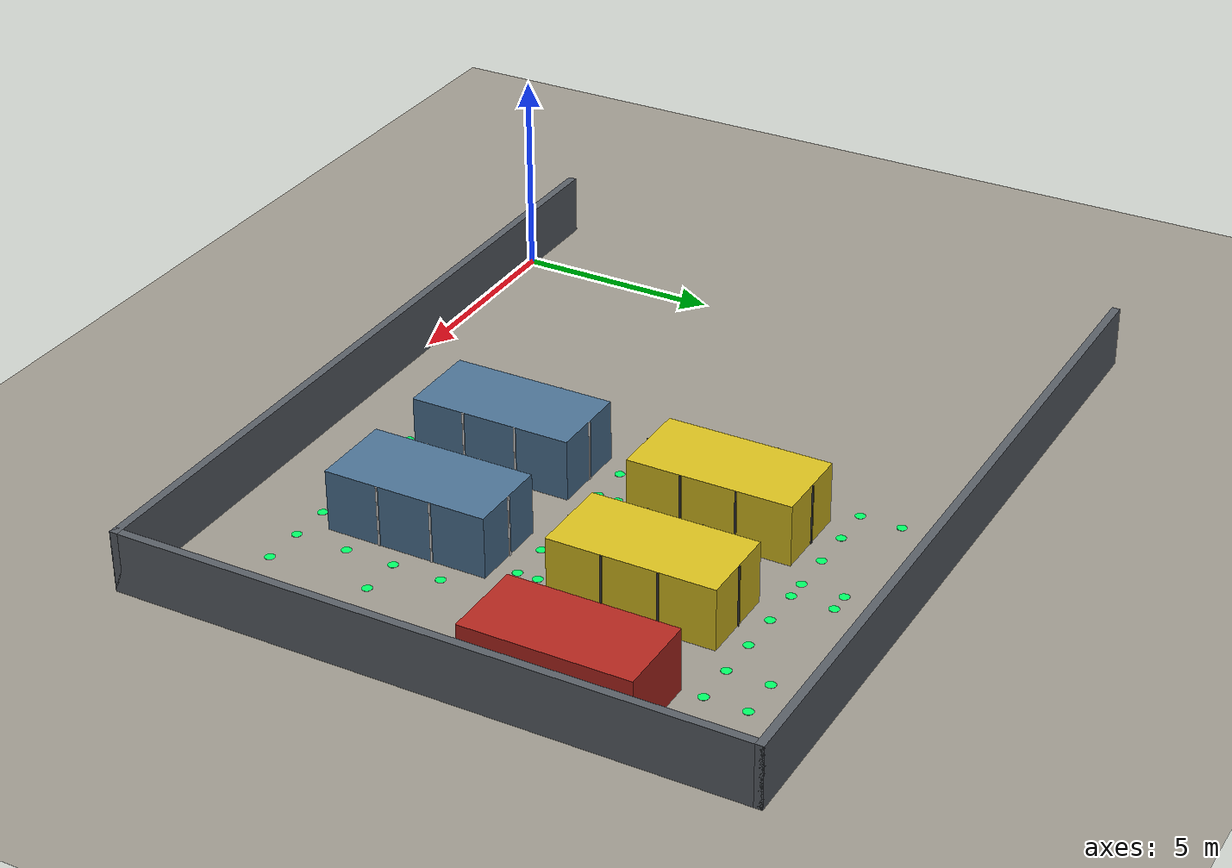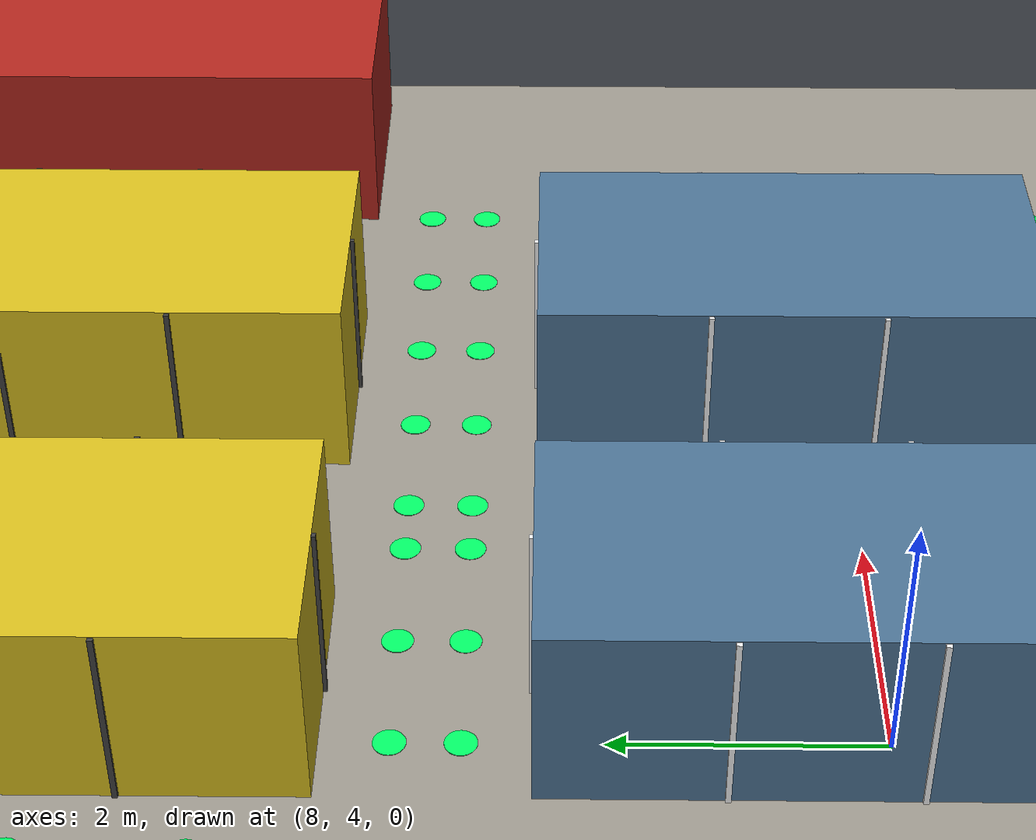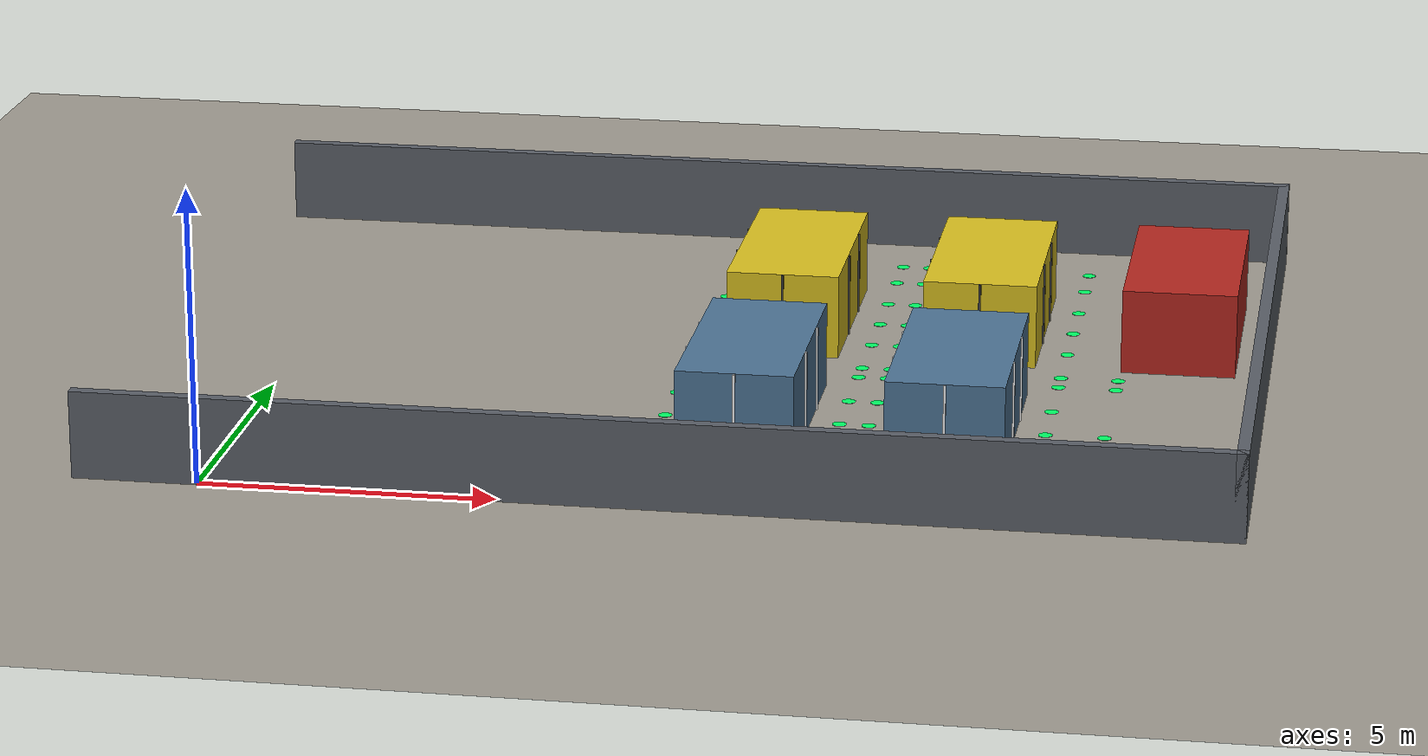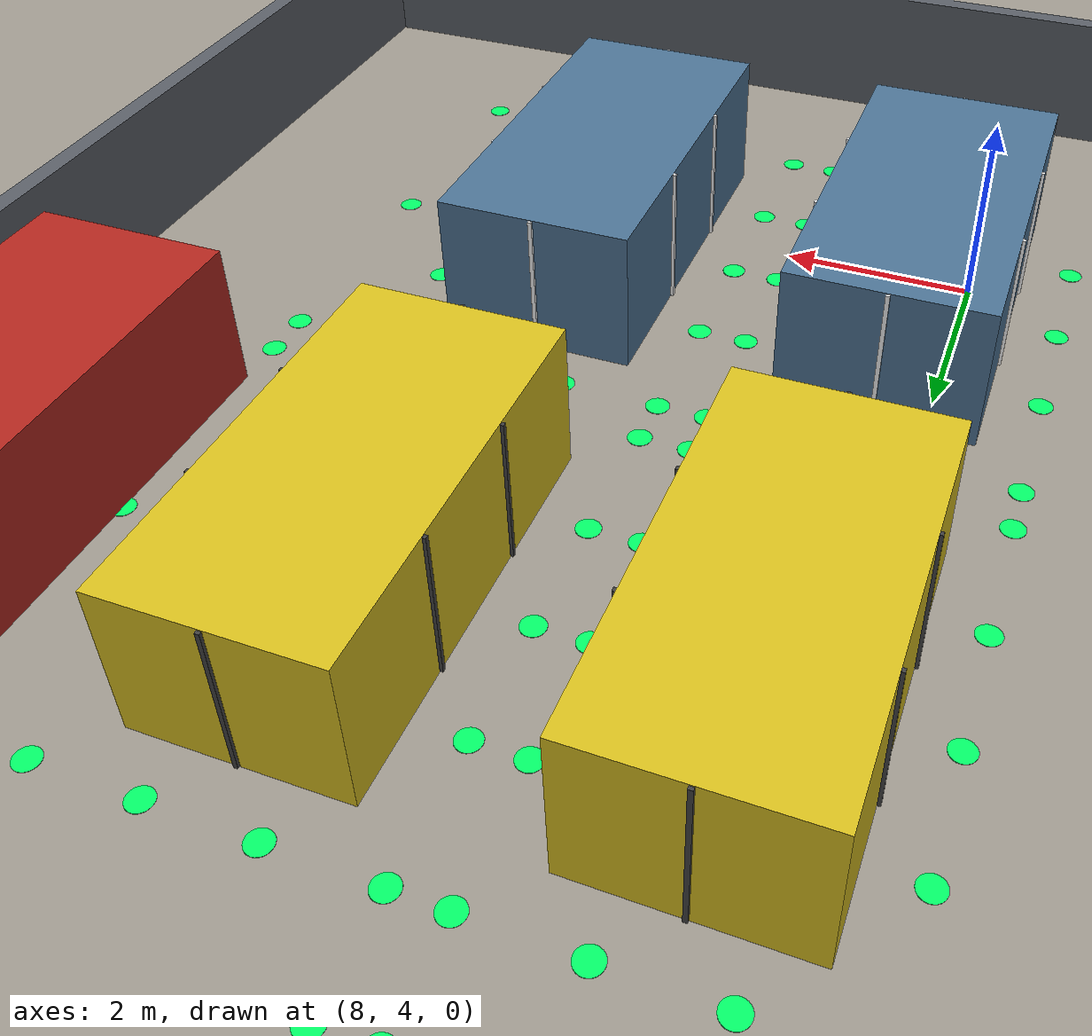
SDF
<sdf version="1.9">
 <world name="sih_warehouse">
  <model name="ground_plane">
   <static>true</static>
   <link name="link">
    <collision name="collision">
     <geometry><plane><normal>0 0 1</normal><size>100 100</size></plane></geometry>
    </collision>
    <visual name="visual">
     <geometry><plane><normal>0 0 1</normal><size>100 100</size></plane></geometry>
     <material>
      <ambient>0.55 0.53 0.50 1</ambient>
      <diffuse>0.62 0.60 0.56 1</diffuse>
      <specular>0.15 0.15 0.14 1</specular>
     </material>
    </visual>
   </link>
  </model>
  <model name="wall_south">
   <static>true</static>
   <pose>7.5 0.0 0.75 0 0 0</pose>
   <link name="link">
    <collision name="col"><geometry><box><size>19.2 0.2 1.5</size></box></geometry></collision>
    <visual name="vis">
     <geometry><box><size>19.2 0.2 1.5</size></box></geometry>
     <material>
      <ambient>0.28 0.30 0.32 1</ambient>
      <diffuse>0.35 0.37 0.40 1</diffuse>
      <specular>0.08 0.08 0.08 1</specular>
     </material>
    </visual>
   </link>
  </model>
  <model name="wall_north">
   <static>true</static>
   <pose>7.5 15.0 0.75 0 0 0</pose>
   <link name="link">
    <collision name="col"><geometry><box><size>19.2 0.2 1.5</size></box></geometry></collision>
    <visual name="vis">
     <geometry><box><size>19.2 0.2 1.5</size></box></geometry>
     <material>
      <ambient>0.28 0.30 0.32 1</ambient>
      <diffuse>0.35 0.37 0.40 1</diffuse>
      <specular>0.08 0.08 0.08 1</specular>
     </material>
    </visual>
   </link>
  </model>
  <model name="wall_east">
   <static>true</static>
   <pose>17.0 7.5 0.75 0 0 0</pose>
   <link name="link">
    <collision name="col"><geometry><box><size>0.2 15.2 1.5</size></box></geometry></collision>
    <visual name="vis">
     <geometry><box><size>0.2 15.2 1.5</size></box></geometry>
     <material>
      <ambient>0.28 0.30 0.32 1</ambient>
      <diffuse>0.35 0.37 0.40 1</diffuse>
      <specular>0.08 0.08 0.08 1</specular>
     </material>
    </visual>
   </link>
  </model>
  <model name="rack_3A">
   <static>true</static>
   <pose>8.5 10.0 0.75 0 0 0</pose>
   <link name="link">
    <collision name="col"><geometry><box><size>2 4 1.5</size></box></geometry></collision>
    <visual name="vis">
     <geometry><box><size>2 4 1.5</size></box></geometry>
     <material>
      <ambient>0.72 0.62 0.10 1</ambient>
      <diffuse>0.85 0.75 0.12 1</diffuse>
      <specular>0.20 0.18 0.05 1</specular>
     </material>
    </visual>
   </link>
  </model>
  <model name="rack_4A">
   <static>true</static>
   <pose>12.0 10.0 0.75 0 0 0</pose>
   <link name="link">
    <collision name="col"><geometry><box><size>2 4 1.5</size></box></geometry></collision>
    <visual name="vis">
     <geometry><box><size>2 4 1.5</size></box></geometry>
     <material>
      <ambient>0.72 0.62 0.10 1</ambient>
      <diffuse>0.85 0.75 0.12 1</diffuse>
      <specular>0.20 0.18 0.05 1</specular>
     </material>
    </visual>
   </link>
  </model>
  <model name="rack_3B">
   <static>true</static>
   <pose>8.5 4.5 0.75 0 0 0</pose>
   <link name="link">
    <collision name="col"><geometry><box><size>2 4 1.5</size></box></geometry></collision>
    <visual name="vis">
     <geometry><box><size>2 4 1.5</size></box></geometry>
     <material>
      <ambient>0.22 0.35 0.48 1</ambient>
      <diffuse>0.30 0.45 0.58 1</diffuse>
      <specular>0.12 0.14 0.18 1</specular>
     </material>
    </visual>
   </link>
  </model>
  <model name="rack_4B">
   <static>true</static>
   <pose>12.0 4.5 0.75 0 0 0</pose>
   <link name="link">
    <collision name="col"><geometry><box><size>2 4 1.5</size></box></geometry></collision>
    <visual name="vis">
     <geometry><box><size>2 4 1.5</size></box></geometry>
     <material>
      <ambient>0.22 0.35 0.48 1</ambient>
      <diffuse>0.30 0.45 0.58 1</diffuse>
      <specular>0.12 0.14 0.18 1</specular>
     </material>
    </visual>
   </link>
  </model>
  <model name="trap_zone">
   <static>true</static>
   <pose>15.5 10.0 0.75 0 0 0</pose>
   <link name="link">
    <collision name="col"><geometry><box><size>2 4 1.5</size></box></geometry></collision>
    <visual name="vis">
     <geometry><box><size>2 4 1.5</size></box></geometry>
     <material>
      <ambient>0.55 0.12 0.10 1</ambient>
      <diffuse>0.70 0.15 0.12 1</diffuse>
      <specular>0.18 0.06 0.05 1</specular>
     </material>
    </visual>
   </link>
  </model>
  <model name="vis_node_37">
   <static>true</static>
   <pose>7.0 7.0 0.005 0 0 0</pose>
   <link name="link">
    <visual name="vis">
     <geometry><cylinder><radius>0.12</radius><length>0.005</length></cylinder></geometry>
     <material>
      <ambient>0.0 0.8 0.3 1</ambient>
      <diffuse>0.0 1.0 0.4 1</diffuse>
      <emissive>0.0 0.4 0.15 1</emissive>
     </material>
    </visual>
   </link>
  </model>
  <model name="vis_node_38">
   <static>true</static>
   <pose>7.0 7.5 0.005 0 0 0</pose>
   <link name="link">
    <visual name="vis">
     <geometry><cylinder><radius>0.12</radius><length>0.005</length></cylinder></geometry>
     <material>
      <ambient>0.0 0.8 0.3 1</ambient>
      <diffuse>0.0 1.0 0.4 1</diffuse>
      <emissive>0.0 0.4 0.15 1</emissive>
     </material>
    </visual>
   </link>
  </model>
  <model name="vis_node_39">
   <static>true</static>
   <pose>7.0 10.0 0.005 0 0 0</pose>
   <link name="link">
    <visual name="vis">
     <geometry><cylinder><radius>0.12</radius><length>0.005</length></cylinder></geometry>
     <material>
      <ambient>0.0 0.8 0.3 1</ambient>
      <diffuse>0.0 1.0 0.4 1</diffuse>
      <emissive>0.0 0.4 0.15 1</emissive>
     </material>
    </visual>
   </link>
  </model>
  <model name="vis_node_40">
   <static>true</static>
   <pose>7.0 12.5 0.005 0 0 0</pose>
   <link name="link">
    <visual name="vis">
     <geometry><cylinder><radius>0.12</radius><length>0.005</length></cylinder></geometry>
     <material>
      <ambient>0.0 0.8 0.3 1</ambient>
      <diffuse>0.0 1.0 0.4 1</diffuse>
      <emissive>0.0 0.4 0.15 1</emissive>
     </material>
    </visual>
   </link>
  </model>
  <model name="vis_node_41">
   <static>true</static>
   <pose>7.0 13.5 0.005 0 0 0</pose>
   <link name="link">
    <visual name="vis">
     <geometry><cylinder><radius>0.12</radius><length>0.005</length></cylinder></geometry>
     <material>
      <ambient>0.0 0.8 0.3 1</ambient>
      <diffuse>0.0 1.0 0.4 1</diffuse>
      <emissive>0.0 0.4 0.15 1</emissive>
     </material>
    </visual>
   </link>
  </model>
  <model name="vis_node_42">
   <static>true</static>
   <pose>10.0 2.0 0.005 0 0 0</pose>
   <link name="link">
    <visual name="vis">
     <geometry><cylinder><radius>0.12</radius><length>0.005</length></cylinder></geometry>
     <material>
      <ambient>0.0 0.8 0.3 1</ambient>
      <diffuse>0.0 1.0 0.4 1</diffuse>
      <emissive>0.0 0.4 0.15 1</emissive>
     </material>
    </visual>
   </link>
  </model>
  <model name="vis_node_43">
   <static>true</static>
   <pose>10.0 4.5 0.005 0 0 0</pose>
   <link name="link">
    <visual name="vis">
     <geometry><cylinder><radius>0.12</radius><length>0.005</length></cylinder></geometry>
     <material>
      <ambient>0.0 0.8 0.3 1</ambient>
      <diffuse>0.0 1.0 0.4 1</diffuse>
      <emissive>0.0 0.4 0.15 1</emissive>
     </material>
    </visual>
   </link>
  </model>
  <model name="vis_node_44">
   <static>true</static>
   <pose>10.0 7.0 0.005 0 0 0</pose>
   <link name="link">
    <visual name="vis">
     <geometry><cylinder><radius>0.12</radius><length>0.005</length></cylinder></geometry>
     <material>
      <ambient>0.0 0.8 0.3 1</ambient>
      <diffuse>0.0 1.0 0.4 1</diffuse>
      <emissive>0.0 0.4 0.15 1</emissive>
     </material>
    </visual>
   </link>
  </model>
  <model name="vis_node_45">
   <static>true</static>
   <pose>10.0 7.5 0.005 0 0 0</pose>
   <link name="link">
    <visual name="vis">
     <geometry><cylinder><radius>0.12</radius><length>0.005</length></cylinder></geometry>
     <material>
      <ambient>0.0 0.8 0.3 1</ambient>
      <diffuse>0.0 1.0 0.4 1</diffuse>
      <emissive>0.0 0.4 0.15 1</emissive>
     </material>
    </visual>
   </link>
  </model>
  <model name="vis_node_46">
   <static>true</static>
   <pose>10.0 10.0 0.005 0 0 0</pose>
   <link name="link">
    <visual name="vis">
     <geometry><cylinder><radius>0.12</radius><length>0.005</length></cylinder></geometry>
     <material>
      <ambient>0.0 0.8 0.3 1</ambient>
      <diffuse>0.0 1.0 0.4 1</diffuse>
      <emissive>0.0 0.4 0.15 1</emissive>
     </material>
    </visual>
   </link>
  </model>
  <model name="vis_node_47">
   <static>true</static>
   <pose>10.0 12.5 0.005 0 0 0</pose>
   <link name="link">
    <visual name="vis">
     <geometry><cylinder><radius>0.12</radius><length>0.005</length></cylinder></geometry>
     <material>
      <ambient>0.0 0.8 0.3 1</ambient>
      <diffuse>0.0 1.0 0.4 1</diffuse>
      <emissive>0.0 0.4 0.15 1</emissive>
     </material>
    </visual>
   </link>
  </model>
  <model name="vis_node_48">
   <static>true</static>
   <pose>10.0 13.5 0.005 0 0 0</pose>
   <link name="link">
    <visual name="vis">
     <geometry><cylinder><radius>0.12</radius><length>0.005</length></cylinder></geometry>
     <material>
      <ambient>0.0 0.8 0.3 1</ambient>
      <diffuse>0.0 1.0 0.4 1</diffuse>
      <emissive>0.0 0.4 0.15 1</emissive>
     </material>
    </visual>
   </link>
  </model>
  <model name="vis_node_49">
   <static>true</static>
   <pose>10.5 2.0 0.005 0 0 0</pose>
   <link name="link">
    <visual name="vis">
     <geometry><cylinder><radius>0.12</radius><length>0.005</length></cylinder></geometry>
     <material>
      <ambient>0.0 0.8 0.3 1</ambient>
      <diffuse>0.0 1.0 0.4 1</diffuse>
      <emissive>0.0 0.4 0.15 1</emissive>
     </material>
    </visual>
   </link>
  </model>
  <model name="vis_node_50">
   <static>true</static>
   <pose>10.5 4.5 0.005 0 0 0</pose>
   <link name="link">
    <visual name="vis">
     <geometry><cylinder><radius>0.12</radius><length>0.005</length></cylinder></geometry>
     <material>
      <ambient>0.0 0.8 0.3 1</ambient>
      <diffuse>0.0 1.0 0.4 1</diffuse>
      <emissive>0.0 0.4 0.15 1</emissive>
     </material>
    </visual>
   </link>
  </model>
  <model name="vis_node_51">
   <static>true</static>
   <pose>10.5 7.0 0.005 0 0 0</pose>
   <link name="link">
    <visual name="vis">
     <geometry><cylinder><radius>0.12</radius><length>0.005</length></cylinder></geometry>
     <material>
      <ambient>0.0 0.8 0.3 1</ambient>
      <diffuse>0.0 1.0 0.4 1</diffuse>
      <emissive>0.0 0.4 0.15 1</emissive>
     </material>
    </visual>
   </link>
  </model>
  <model name="vis_node_52">
   <static>true</static>
   <pose>10.5 7.5 0.005 0 0 0</pose>
   <link name="link">
    <visual name="vis">
     <geometry><cylinder><radius>0.12</radius><length>0.005</length></cylinder></geometry>
     <material>
      <ambient>0.0 0.8 0.3 1</ambient>
      <diffuse>0.0 1.0 0.4 1</diffuse>
      <emissive>0.0 0.4 0.15 1</emissive>
     </material>
    </visual>
   </link>
  </model>
  <model name="vis_node_53">
   <static>true</static>
   <pose>10.5 10.0 0.005 0 0 0</pose>
   <link name="link">
    <visual name="vis">
     <geometry><cylinder><radius>0.12</radius><length>0.005</length></cylinder></geometry>
     <material>
      <ambient>0.0 0.8 0.3 1</ambient>
      <diffuse>0.0 1.0 0.4 1</diffuse>
      <emissive>0.0 0.4 0.15 1</emissive>
     </material>
    </visual>
   </link>
  </model>
  <model name="vis_node_54">
   <static>true</static>
   <pose>10.5 12.5 0.005 0 0 0</pose>
   <link name="link">
    <visual name="vis">
     <geometry><cylinder><radius>0.12</radius><length>0.005</length></cylinder></geometry>
     <material>
      <ambient>0.0 0.8 0.3 1</ambient>
      <diffuse>0.0 1.0 0.4 1</diffuse>
      <emissive>0.0 0.4 0.15 1</emissive>
     </material>
    </visual>
   </link>
  </model>
  <model name="vis_node_55">
   <static>true</static>
   <pose>10.5 13.5 0.005 0 0 0</pose>
   <link name="link">
    <visual name="vis">
     <geometry><cylinder><radius>0.12</radius><length>0.005</length></cylinder></geometry>
     <material>
      <ambient>0.0 0.8 0.3 1</ambient>
      <diffuse>0.0 1.0 0.4 1</diffuse>
      <emissive>0.0 0.4 0.15 1</emissive>
     </material>
    </visual>
   </link>
  </model>
  <model name="vis_node_56">
   <static>true</static>
   <pose>13.5 2.0 0.005 0 0 0</pose>
   <link name="link">
    <visual name="vis">
     <geometry><cylinder><radius>0.12</radius><length>0.005</length></cylinder></geometry>
     <material>
      <ambient>0.0 0.8 0.3 1</ambient>
      <diffuse>0.0 1.0 0.4 1</diffuse>
      <emissive>0.0 0.4 0.15 1</emissive>
     </material>
    </visual>
   </link>
  </model>
  <model name="vis_node_57">
   <static>true</static>
   <pose>13.5 4.5 0.005 0 0 0</pose>
   <link name="link">
    <visual name="vis">
     <geometry><cylinder><radius>0.12</radius><length>0.005</length></cylinder></geometry>
     <material>
      <ambient>0.0 0.8 0.3 1</ambient>
      <diffuse>0.0 1.0 0.4 1</diffuse>
      <emissive>0.0 0.4 0.15 1</emissive>
     </material>
    </visual>
   </link>
  </model>
  <model name="vis_node_58">
   <static>true</static>
   <pose>13.5 7.0 0.005 0 0 0</pose>
   <link name="link">
    <visual name="vis">
     <geometry><cylinder><radius>0.12</radius><length>0.005</length></cylinder></geometry>
     <material>
      <ambient>0.0 0.8 0.3 1</ambient>
      <diffuse>0.0 1.0 0.4 1</diffuse>
      <emissive>0.0 0.4 0.15 1</emissive>
     </material>
    </visual>
   </link>
  </model>
  <model name="vis_node_59">
   <static>true</static>
   <pose>13.5 7.5 0.005 0 0 0</pose>
   <link name="link">
    <visual name="vis">
     <geometry><cylinder><radius>0.12</radius><length>0.005</length></cylinder></geometry>
     <material>
      <ambient>0.0 0.8 0.3 1</ambient>
      <diffuse>0.0 1.0 0.4 1</diffuse>
      <emissive>0.0 0.4 0.15 1</emissive>
     </material>
    </visual>
   </link>
  </model>
  <model name="vis_node_60">
   <static>true</static>
   <pose>13.5 10.0 0.005 0 0 0</pose>
   <link name="link">
    <visual name="vis">
     <geometry><cylinder><radius>0.12</radius><length>0.005</length></cylinder></geometry>
     <material>
      <ambient>0.0 0.8 0.3 1</ambient>
      <diffuse>0.0 1.0 0.4 1</diffuse>
      <emissive>0.0 0.4 0.15 1</emissive>
     </material>
    </visual>
   </link>
  </model>
  <model name="vis_node_61">
   <static>true</static>
   <pose>13.5 12.5 0.005 0 0 0</pose>
   <link name="link">
    <visual name="vis">
     <geometry><cylinder><radius>0.12</radius><length>0.005</length></cylinder></geometry>
     <material>
      <ambient>0.0 0.8 0.3 1</ambient>
      <diffuse>0.0 1.0 0.4 1</diffuse>
      <emissive>0.0 0.4 0.15 1</emissive>
     </material>
    </visual>
   </link>
  </model>
  <model name="vis_node_62">
   <static>true</static>
   <pose>13.5 13.5 0.005 0 0 0</pose>
   <link name="link">
    <visual name="vis">
     <geometry><cylinder><radius>0.12</radius><length>0.005</length></cylinder></geometry>
     <material>
      <ambient>0.0 0.8 0.3 1</ambient>
      <diffuse>0.0 1.0 0.4 1</diffuse>
      <emissive>0.0 0.4 0.15 1</emissive>
     </material>
    </visual>
   </link>
  </model>
  <model name="vis_node_63">
   <static>true</static>
   <pose>14.5 2.0 0.005 0 0 0</pose>
   <link name="link">
    <visual name="vis">
     <geometry><cylinder><radius>0.12</radius><length>0.005</length></cylinder></geometry>
     <material>
      <ambient>0.0 0.8 0.3 1</ambient>
      <diffuse>0.0 1.0 0.4 1</diffuse>
      <emissive>0.0 0.4 0.15 1</emissive>
     </material>
    </visual>
   </link>
  </model>
  <model name="vis_node_64">
   <static>true</static>
   <pose>14.5 4.5 0.005 0 0 0</pose>
   <link name="link">
    <visual name="vis">
     <geometry><cylinder><radius>0.12</radius><length>0.005</length></cylinder></geometry>
     <material>
      <ambient>0.0 0.8 0.3 1</ambient>
      <diffuse>0.0 1.0 0.4 1</diffuse>
      <emissive>0.0 0.4 0.15 1</emissive>
     </material>
    </visual>
   </link>
  </model>
  <model name="vis_node_65">
   <static>true</static>
   <pose>14.5 7.0 0.005 0 0 0</pose>
   <link name="link">
    <visual name="vis">
     <geometry><cylinder><radius>0.12</radius><length>0.005</length></cylinder></geometry>
     <material>
      <ambient>0.0 0.8 0.3 1</ambient>
      <diffuse>0.0 1.0 0.4 1</diffuse>
      <emissive>0.0 0.4 0.15 1</emissive>
     </material>
    </visual>
   </link>
  </model>
  <model name="vis_node_66">
   <static>true</static>
   <pose>14.5 7.5 0.005 0 0 0</pose>
   <link name="link">
    <visual name="vis">
     <geometry><cylinder><radius>0.12</radius><length>0.005</length></cylinder></geometry>
     <material>
      <ambient>0.0 0.8 0.3 1</ambient>
      <diffuse>0.0 1.0 0.4 1</diffuse>
      <emissive>0.0 0.4 0.15 1</emissive>
     </material>
    </visual>
   </link>
  </model>
  <model name="vis_node_67">
   <static>true</static>
   <pose>14.5 10.0 0.005 0 0 0</pose>
   <link name="link">
    <visual name="vis">
     <geometry><cylinder><radius>0.12</radius><length>0.005</length></cylinder></geometry>
     <material>
      <ambient>0.0 0.8 0.3 1</ambient>
      <diffuse>0.0 1.0 0.4 1</diffuse>
      <emissive>0.0 0.4 0.15 1</emissive>
     </material>
    </visual>
   </link>
  </model>
  <model name="vis_node_68">
   <static>true</static>
   <pose>14.5 12.5 0.005 0 0 0</pose>
   <link name="link">
    <visual name="vis">
     <geometry><cylinder><radius>0.12</radius><length>0.005</length></cylinder></geometry>
     <material>
      <ambient>0.0 0.8 0.3 1</ambient>
      <diffuse>0.0 1.0 0.4 1</diffuse>
      <emissive>0.0 0.4 0.15 1</emissive>
     </material>
    </visual>
   </link>
  </model>
  <model name="vis_node_69">
   <static>true</static>
   <pose>14.5 13.5 0.005 0 0 0</pose>
   <link name="link">
    <visual name="vis">
     <geometry><cylinder><radius>0.12</radius><length>0.005</length></cylinder></geometry>
     <material>
      <ambient>0.0 0.8 0.3 1</ambient>
      <diffuse>0.0 1.0 0.4 1</diffuse>
      <emissive>0.0 0.4 0.15 1</emissive>
     </material>
    </visual>
   </link>
  </model>
  <model name="vis_node_90">
   <static>true</static>
   <pose>7.0 11.2 0.005 0 0 0</pose>
   <link name="link">
    <visual name="vis">
     <geometry><cylinder><radius>0.12</radius><length>0.005</length></cylinder></geometry>
     <material>
      <ambient>0.0 0.8 0.3 1</ambient>
      <diffuse>0.0 1.0 0.4 1</diffuse>
      <emissive>0.0 0.4 0.15 1</emissive>
     </material>
    </visual>
   </link>
  </model>
  <model name="vis_node_91">
   <static>true</static>
   <pose>7.0 10.0 0.005 0 0 0</pose>
   <link name="link">
    <visual name="vis">
     <geometry><cylinder><radius>0.12</radius><length>0.005</length></cylinder></geometry>
     <material>
      <ambient>0.0 0.8 0.3 1</ambient>
      <diffuse>0.0 1.0 0.4 1</diffuse>
      <emissive>0.0 0.4 0.15 1</emissive>
     </material>
    </visual>
   </link>
  </model>
  <model name="vis_node_92">
   <static>true</static>
   <pose>7.0 8.8 0.005 0 0 0</pose>
   <link name="link">
    <visual name="vis">
     <geometry><cylinder><radius>0.12</radius><length>0.005</length></cylinder></geometry>
     <material>
      <ambient>0.0 0.8 0.3 1</ambient>
      <diffuse>0.0 1.0 0.4 1</diffuse>
      <emissive>0.0 0.4 0.15 1</emissive>
     </material>
    </visual>
   </link>
  </model>
  <model name="vis_node_93">
   <static>true</static>
   <pose>8.0 7.5 0.005 0 0 0</pose>
   <link name="link">
    <visual name="vis">
     <geometry><cylinder><radius>0.12</radius><length>0.005</length></cylinder></geometry>
     <material>
      <ambient>0.0 0.8 0.3 1</ambient>
      <diffuse>0.0 1.0 0.4 1</diffuse>
      <emissive>0.0 0.4 0.15 1</emissive>
     </material>
    </visual>
   </link>
  </model>
  <model name="vis_node_94">
   <static>true</static>
   <pose>9.0 7.5 0.005 0 0 0</pose>
   <link name="link">
    <visual name="vis">
     <geometry><cylinder><radius>0.12</radius><length>0.005</length></cylinder></geometry>
     <material>
      <ambient>0.0 0.8 0.3 1</ambient>
      <diffuse>0.0 1.0 0.4 1</diffuse>
      <emissive>0.0 0.4 0.15 1</emissive>
     </material>
    </visual>
   </link>
  </model>
  <model name="vis_node_95">
   <static>true</static>
   <pose>10.0 8.8 0.005 0 0 0</pose>
   <link name="link">
    <visual name="vis">
     <geometry><cylinder><radius>0.12</radius><length>0.005</length></cylinder></geometry>
     <material>
      <ambient>0.0 0.8 0.3 1</ambient>
      <diffuse>0.0 1.0 0.4 1</diffuse>
      <emissive>0.0 0.4 0.15 1</emissive>
     </material>
    </visual>
   </link>
  </model>
  <model name="vis_node_96">
   <static>true</static>
   <pose>10.0 10.0 0.005 0 0 0</pose>
   <link name="link">
    <visual name="vis">
     <geometry><cylinder><radius>0.12</radius><length>0.005</length></cylinder></geometry>
     <material>
      <ambient>0.0 0.8 0.3 1</ambient>
      <diffuse>0.0 1.0 0.4 1</diffuse>
      <emissive>0.0 0.4 0.15 1</emissive>
     </material>
    </visual>
   </link>
  </model>
  <model name="vis_node_97">
   <static>true</static>
   <pose>10.0 11.2 0.005 0 0 0</pose>
   <link name="link">
    <visual name="vis">
     <geometry><cylinder><radius>0.12</radius><length>0.005</length></cylinder></geometry>
     <material>
      <ambient>0.0 0.8 0.3 1</ambient>
      <diffuse>0.0 1.0 0.4 1</diffuse>
      <emissive>0.0 0.4 0.15 1</emissive>
     </material>
    </visual>
   </link>
  </model>
  <model name="vis_node_98">
   <static>true</static>
   <pose>9.0 12.5 0.005 0 0 0</pose>
   <link name="link">
    <visual name="vis">
     <geometry><cylinder><radius>0.12</radius><length>0.005</length></cylinder></geometry>
     <material>
      <ambient>0.0 0.8 0.3 1</ambient>
      <diffuse>0.0 1.0 0.4 1</diffuse>
      <emissive>0.0 0.4 0.15 1</emissive>
     </material>
    </visual>
   </link>
  </model>
  <model name="vis_node_99">
   <static>true</static>
   <pose>8.0 12.5 0.005 0 0 0</pose>
   <link name="link">
    <visual name="vis">
     <geometry><cylinder><radius>0.12</radius><length>0.005</length></cylinder></geometry>
     <material>
      <ambient>0.0 0.8 0.3 1</ambient>
      <diffuse>0.0 1.0 0.4 1</diffuse>
      <emissive>0.0 0.4 0.15 1</emissive>
     </material>
    </visual>
   </link>
  </model>
  <model name="vis_node_100">
   <static>true</static>
   <pose>10.5 11.2 0.005 0 0 0</pose>
   <link name="link">
    <visual name="vis">
     <geometry><cylinder><radius>0.12</radius><length>0.005</length></cylinder></geometry>
     <material>
      <ambient>0.0 0.8 0.3 1</ambient>
      <diffuse>0.0 1.0 0.4 1</diffuse>
      <emissive>0.0 0.4 0.15 1</emissive>
     </material>
    </visual>
   </link>
  </model>
  <model name="vis_node_101">
   <static>true</static>
   <pose>10.5 10.0 0.005 0 0 0</pose>
   <link name="link">
    <visual name="vis">
     <geometry><cylinder><radius>0.12</radius><length>0.005</length></cylinder></geometry>
     <material>
      <ambient>0.0 0.8 0.3 1</ambient>
      <diffuse>0.0 1.0 0.4 1</diffuse>
      <emissive>0.0 0.4 0.15 1</emissive>
     </material>
    </visual>
   </link>
  </model>
  <model name="vis_node_102">
   <static>true</static>
   <pose>10.5 8.8 0.005 0 0 0</pose>
   <link name="link">
    <visual name="vis">
     <geometry><cylinder><radius>0.12</radius><length>0.005</length></cylinder></geometry>
     <material>
      <ambient>0.0 0.8 0.3 1</ambient>
      <diffuse>0.0 1.0 0.4 1</diffuse>
      <emissive>0.0 0.4 0.15 1</emissive>
     </material>
    </visual>
   </link>
  </model>
  <model name="vis_node_103">
   <static>true</static>
   <pose>11.5 7.5 0.005 0 0 0</pose>
   <link name="link">
    <visual name="vis">
     <geometry><cylinder><radius>0.12</radius><length>0.005</length></cylinder></geometry>
     <material>
      <ambient>0.0 0.8 0.3 1</ambient>
      <diffuse>0.0 1.0 0.4 1</diffuse>
      <emissive>0.0 0.4 0.15 1</emissive>
     </material>
    </visual>
   </link>
  </model>
  <model name="vis_node_104">
   <static>true</static>
   <pose>12.5 7.5 0.005 0 0 0</pose>
   <link name="link">
    <visual name="vis">
     <geometry><cylinder><radius>0.12</radius><length>0.005</length></cylinder></geometry>
     <material>
      <ambient>0.0 0.8 0.3 1</ambient>
      <diffuse>0.0 1.0 0.4 1</diffuse>
      <emissive>0.0 0.4 0.15 1</emissive>
     </material>
    </visual>
   </link>
  </model>
  <model name="vis_node_105">
   <static>true</static>
   <pose>13.5 8.8 0.005 0 0 0</pose>
   <link name="link">
    <visual name="vis">
     <geometry><cylinder><radius>0.12</radius><length>0.005</length></cylinder></geometry>
     <material>
      <ambient>0.0 0.8 0.3 1</ambient>
      <diffuse>0.0 1.0 0.4 1</diffuse>
      <emissive>0.0 0.4 0.15 1</emissive>
     </material>
    </visual>
   </link>
  </model>
  <model name="vis_node_106">
   <static>true</static>
   <pose>13.5 10.0 0.005 0 0 0</pose>
   <link name="link">
    <visual name="vis">
     <geometry><cylinder><radius>0.12</radius><length>0.005</length></cylinder></geometry>
     <material>
      <ambient>0.0 0.8 0.3 1</ambient>
      <diffuse>0.0 1.0 0.4 1</diffuse>
      <emissive>0.0 0.4 0.15 1</emissive>
     </material>
    </visual>
   </link>
  </model>
  <model name="vis_node_107">
   <static>true</static>
   <pose>13.5 11.2 0.005 0 0 0</pose>
   <link name="link">
    <visual name="vis">
     <geometry><cylinder><radius>0.12</radius><length>0.005</length></cylinder></geometry>
     <material>
      <ambient>0.0 0.8 0.3 1</ambient>
      <diffuse>0.0 1.0 0.4 1</diffuse>
      <emissive>0.0 0.4 0.15 1</emissive>
     </material>
    </visual>
   </link>
  </model>
  <model name="vis_node_108">
   <static>true</static>
   <pose>12.5 12.5 0.005 0 0 0</pose>
   <link name="link">
    <visual name="vis">
     <geometry><cylinder><radius>0.12</radius><length>0.005</length></cylinder></geometry>
     <material>
      <ambient>0.0 0.8 0.3 1</ambient>
      <diffuse>0.0 1.0 0.4 1</diffuse>
      <emissive>0.0 0.4 0.15 1</emissive>
     </material>
    </visual>
   </link>
  </model>
  <model name="vis_node_109">
   <static>true</static>
   <pose>11.5 12.5 0.005 0 0 0</pose>
   <link name="link">
    <visual name="vis">
     <geometry><cylinder><radius>0.12</radius><length>0.005</length></cylinder></geometry>
     <material>
      <ambient>0.0 0.8 0.3 1</ambient>
      <diffuse>0.0 1.0 0.4 1</diffuse>
      <emissive>0.0 0.4 0.15 1</emissive>
     </material>
    </visual>
   </link>
  </model>
  <model name="vis_node_130">
   <static>true</static>
   <pose>7.0 5.7 0.005 0 0 0</pose>
   <link name="link">
    <visual name="vis">
     <geometry><cylinder><radius>0.12</radius><length>0.005</length></cylinder></geometry>
     <material>
      <ambient>0.0 0.8 0.3 1</ambient>
      <diffuse>0.0 1.0 0.4 1</diffuse>
      <emissive>0.0 0.4 0.15 1</emissive>
     </material>
    </visual>
   </link>
  </model>
  <model name="vis_node_131">
   <static>true</static>
   <pose>7.0 4.5 0.005 0 0 0</pose>
   <link name="link">
    <visual name="vis">
     <geometry><cylinder><radius>0.12</radius><length>0.005</length></cylinder></geometry>
     <material>
      <ambient>0.0 0.8 0.3 1</ambient>
      <diffuse>0.0 1.0 0.4 1</diffuse>
      <emissive>0.0 0.4 0.15 1</emissive>
     </material>
    </visual>
   </link>
  </model>
  <model name="vis_node_132">
   <static>true</static>
   <pose>7.0 3.3 0.005 0 0 0</pose>
   <link name="link">
    <visual name="vis">
     <geometry><cylinder><radius>0.12</radius><length>0.005</length></cylinder></geometry>
     <material>
      <ambient>0.0 0.8 0.3 1</ambient>
      <diffuse>0.0 1.0 0.4 1</diffuse>
      <emissive>0.0 0.4 0.15 1</emissive>
     </material>
    </visual>
   </link>
  </model>
  <model name="vis_node_133">
   <static>true</static>
   <pose>8.0 2.0 0.005 0 0 0</pose>
   <link name="link">
    <visual name="vis">
     <geometry><cylinder><radius>0.12</radius><length>0.005</length></cylinder></geometry>
     <material>
      <ambient>0.0 0.8 0.3 1</ambient>
      <diffuse>0.0 1.0 0.4 1</diffuse>
      <emissive>0.0 0.4 0.15 1</emissive>
     </material>
    </visual>
   </link>
  </model>
  <model name="vis_node_134">
   <static>true</static>
   <pose>9.0 2.0 0.005 0 0 0</pose>
   <link name="link">
    <visual name="vis">
     <geometry><cylinder><radius>0.12</radius><length>0.005</length></cylinder></geometry>
     <material>
      <ambient>0.0 0.8 0.3 1</ambient>
      <diffuse>0.0 1.0 0.4 1</diffuse>
      <emissive>0.0 0.4 0.15 1</emissive>
     </material>
    </visual>
   </link>
  </model>
  <model name="vis_node_135">
   <static>true</static>
   <pose>10.0 3.3 0.005 0 0 0</pose>
   <link name="link">
    <visual name="vis">
     <geometry><cylinder><radius>0.12</radius><length>0.005</length></cylinder></geometry>
     <material>
      <ambient>0.0 0.8 0.3 1</ambient>
      <diffuse>0.0 1.0 0.4 1</diffuse>
      <emissive>0.0 0.4 0.15 1</emissive>
     </material>
    </visual>
   </link>
  </model>
  <model name="vis_node_136">
   <static>true</static>
   <pose>10.0 4.5 0.005 0 0 0</pose>
   <link name="link">
    <visual name="vis">
     <geometry><cylinder><radius>0.12</radius><length>0.005</length></cylinder></geometry>
     <material>
      <ambient>0.0 0.8 0.3 1</ambient>
      <diffuse>0.0 1.0 0.4 1</diffuse>
      <emissive>0.0 0.4 0.15 1</emissive>
     </material>
    </visual>
   </link>
  </model>
  <model name="vis_node_137">
   <static>true</static>
   <pose>10.0 5.7 0.005 0 0 0</pose>
   <link name="link">
    <visual name="vis">
     <geometry><cylinder><radius>0.12</radius><length>0.005</length></cylinder></geometry>
     <material>
      <ambient>0.0 0.8 0.3 1</ambient>
      <diffuse>0.0 1.0 0.4 1</diffuse>
      <emissive>0.0 0.4 0.15 1</emissive>
     </material>
    </visual>
   </link>
  </model>
  <model name="vis_node_138">
   <static>true</static>
   <pose>9.0 7.0 0.005 0 0 0</pose>
   <link name="link">
    <visual name="vis">
     <geometry><cylinder><radius>0.12</radius><length>0.005</length></cylinder></geometry>
     <material>
      <ambient>0.0 0.8 0.3 1</ambient>
      <diffuse>0.0 1.0 0.4 1</diffuse>
      <emissive>0.0 0.4 0.15 1</emissive>
     </material>
    </visual>
   </link>
  </model>
  <model name="vis_node_139">
   <static>true</static>
   <pose>8.0 7.0 0.005 0 0 0</pose>
   <link name="link">
    <visual name="vis">
     <geometry><cylinder><radius>0.12</radius><length>0.005</length></cylinder></geometry>
     <material>
      <ambient>0.0 0.8 0.3 1</ambient>
      <diffuse>0.0 1.0 0.4 1</diffuse>
      <emissive>0.0 0.4 0.15 1</emissive>
     </material>
    </visual>
   </link>
  </model>
  <model name="vis_node_140">
   <static>true</static>
   <pose>10.5 5.7 0.005 0 0 0</pose>
   <link name="link">
    <visual name="vis">
     <geometry><cylinder><radius>0.12</radius><length>0.005</length></cylinder></geometry>
     <material>
      <ambient>0.0 0.8 0.3 1</ambient>
      <diffuse>0.0 1.0 0.4 1</diffuse>
      <emissive>0.0 0.4 0.15 1</emissive>
     </material>
    </visual>
   </link>
  </model>
  <model name="vis_node_141">
   <static>true</static>
   <pose>10.5 4.5 0.005 0 0 0</pose>
   <link name="link">
    <visual name="vis">
     <geometry><cylinder><radius>0.12</radius><length>0.005</length></cylinder></geometry>
     <material>
      <ambient>0.0 0.8 0.3 1</ambient>
      <diffuse>0.0 1.0 0.4 1</diffuse>
      <emissive>0.0 0.4 0.15 1</emissive>
     </material>
    </visual>
   </link>
  </model>
  <model name="vis_node_142">
   <static>true</static>
   <pose>10.5 3.3 0.005 0 0 0</pose>
   <link name="link">
    <visual name="vis">
     <geometry><cylinder><radius>0.12</radius><length>0.005</length></cylinder></geometry>
     <material>
      <ambient>0.0 0.8 0.3 1</ambient>
      <diffuse>0.0 1.0 0.4 1</diffuse>
      <emissive>0.0 0.4 0.15 1</emissive>
     </material>
    </visual>
   </link>
  </model>
  <model name="vis_node_143">
   <static>true</static>
   <pose>11.5 2.0 0.005 0 0 0</pose>
   <link name="link">
    <visual name="vis">
     <geometry><cylinder><radius>0.12</radius><length>0.005</length></cylinder></geometry>
     <material>
      <ambient>0.0 0.8 0.3 1</ambient>
      <diffuse>0.0 1.0 0.4 1</diffuse>
      <emissive>0.0 0.4 0.15 1</emissive>
     </material>
    </visual>
   </link>
  </model>
  <model name="vis_node_144">
   <static>true</static>
   <pose>12.5 2.0 0.005 0 0 0</pose>
   <link name="link">
    <visual name="vis">
     <geometry><cylinder><radius>0.12</radius><length>0.005</length></cylinder></geometry>
     <material>
      <ambient>0.0 0.8 0.3 1</ambient>
      <diffuse>0.0 1.0 0.4 1</diffuse>
      <emissive>0.0 0.4 0.15 1</emissive>
     </material>
    </visual>
   </link>
  </model>
  <model name="vis_node_145">
   <static>true</static>
   <pose>13.5 3.3 0.005 0 0 0</pose>
   <link name="link">
    <visual name="vis">
     <geometry><cylinder><radius>0.12</radius><length>0.005</length></cylinder></geometry>
     <material>
      <ambient>0.0 0.8 0.3 1</ambient>
      <diffuse>0.0 1.0 0.4 1</diffuse>
      <emissive>0.0 0.4 0.15 1</emissive>
     </material>
    </visual>
   </link>
  </model>
  <model name="vis_node_146">
   <static>true</static>
   <pose>13.5 4.5 0.005 0 0 0</pose>
   <link name="link">
    <visual name="vis">
     <geometry><cylinder><radius>0.12</radius><length>0.005</length></cylinder></geometry>
     <material>
      <ambient>0.0 0.8 0.3 1</ambient>
      <diffuse>0.0 1.0 0.4 1</diffuse>
      <emissive>0.0 0.4 0.15 1</emissive>
     </material>
    </visual>
   </link>
  </model>
  <model name="vis_node_147">
   <static>true</static>
   <pose>13.5 5.7 0.005 0 0 0</pose>
   <link name="link">
    <visual name="vis">
     <geometry><cylinder><radius>0.12</radius><length>0.005</length></cylinder></geometry>
     <material>
      <ambient>0.0 0.8 0.3 1</ambient>
      <diffuse>0.0 1.0 0.4 1</diffuse>
      <emissive>0.0 0.4 0.15 1</emissive>
     </material>
    </visual>
   </link>
  </model>
  <model name="vis_node_148">
   <static>true</static>
   <pose>12.5 7.0 0.005 0 0 0</pose>
   <link name="link">
    <visual name="vis">
     <geometry><cylinder><radius>0.12</radius><length>0.005</length></cylinder></geometry>
     <material>
      <ambient>0.0 0.8 0.3 1</ambient>
      <diffuse>0.0 1.0 0.4 1</diffuse>
      <emissive>0.0 0.4 0.15 1</emissive>
     </material>
    </visual>
   </link>
  </model>
  <model name="vis_node_149">
   <static>true</static>
   <pose>11.5 7.0 0.005 0 0 0</pose>
   <link name="link">
    <visual name="vis">
     <geometry><cylinder><radius>0.12</radius><length>0.005</length></cylinder></geometry>
     <material>
      <ambient>0.0 0.8 0.3 1</ambient>
      <diffuse>0.0 1.0 0.4 1</diffuse>
      <emissive>0.0 0.4 0.15 1</emissive>
     </material>
    </visual>
   </link>
  </model>
  <model name="vis_div_12">
   <static>true</static>
   <pose>7.49 9.33 0.75 0 0 0</pose>
   <link name="link">
    <visual name="vis">
     <geometry><box><size>0.04 0.04 1.48</size></box></geometry>
     <material><ambient>0.15 0.15 0.15 1</ambient><diffuse>0.25 0.25 0.25 1</diffuse></material>
    </visual>
   </link>
  </model>
  <model name="vis_div_13">
   <static>true</static>
   <pose>7.49 10.67 0.75 0 0 0</pose>
   <link name="link">
    <visual name="vis">
     <geometry><box><size>0.04 0.04 1.48</size></box></geometry>
     <material><ambient>0.15 0.15 0.15 1</ambient><diffuse>0.25 0.25 0.25 1</diffuse></material>
    </visual>
   </link>
  </model>
  <model name="vis_div_14">
   <static>true</static>
   <pose>8.5 7.99 0.75 0 0 0</pose>
   <link name="link">
    <visual name="vis">
     <geometry><box><size>0.04 0.04 1.48</size></box></geometry>
     <material><ambient>0.15 0.15 0.15 1</ambient><diffuse>0.25 0.25 0.25 1</diffuse></material>
    </visual>
   </link>
  </model>
  <model name="vis_div_15">
   <static>true</static>
   <pose>9.51 9.33 0.75 0 0 0</pose>
   <link name="link">
    <visual name="vis">
     <geometry><box><size>0.04 0.04 1.48</size></box></geometry>
     <material><ambient>0.15 0.15 0.15 1</ambient><diffuse>0.25 0.25 0.25 1</diffuse></material>
    </visual>
   </link>
  </model>
  <model name="vis_div_16">
   <static>true</static>
   <pose>9.51 10.67 0.75 0 0 0</pose>
   <link name="link">
    <visual name="vis">
     <geometry><box><size>0.04 0.04 1.48</size></box></geometry>
     <material><ambient>0.15 0.15 0.15 1</ambient><diffuse>0.25 0.25 0.25 1</diffuse></material>
    </visual>
   </link>
  </model>
  <model name="vis_div_17">
   <static>true</static>
   <pose>8.5 12.01 0.75 0 0 0</pose>
   <link name="link">
    <visual name="vis">
     <geometry><box><size>0.04 0.04 1.48</size></box></geometry>
     <material><ambient>0.15 0.15 0.15 1</ambient><diffuse>0.25 0.25 0.25 1</diffuse></material>
    </visual>
   </link>
  </model>
  <model name="vis_div_18">
   <static>true</static>
   <pose>10.99 9.33 0.75 0 0 0</pose>
   <link name="link">
    <visual name="vis">
     <geometry><box><size>0.04 0.04 1.48</size></box></geometry>
     <material><ambient>0.15 0.15 0.15 1</ambient><diffuse>0.25 0.25 0.25 1</diffuse></material>
    </visual>
   </link>
  </model>
  <model name="vis_div_19">
   <static>true</static>
   <pose>10.99 10.67 0.75 0 0 0</pose>
   <link name="link">
    <visual name="vis">
     <geometry><box><size>0.04 0.04 1.48</size></box></geometry>
     <material><ambient>0.15 0.15 0.15 1</ambient><diffuse>0.25 0.25 0.25 1</diffuse></material>
    </visual>
   </link>
  </model>
  <model name="vis_div_20">
   <static>true</static>
   <pose>12.0 7.99 0.75 0 0 0</pose>
   <link name="link">
    <visual name="vis">
     <geometry><box><size>0.04 0.04 1.48</size></box></geometry>
     <material><ambient>0.15 0.15 0.15 1</ambient><diffuse>0.25 0.25 0.25 1</diffuse></material>
    </visual>
   </link>
  </model>
  <model name="vis_div_21">
   <static>true</static>
   <pose>13.01 9.33 0.75 0 0 0</pose>
   <link name="link">
    <visual name="vis">
     <geometry><box><size>0.04 0.04 1.48</size></box></geometry>
     <material><ambient>0.15 0.15 0.15 1</ambient><diffuse>0.25 0.25 0.25 1</diffuse></material>
    </visual>
   </link>
  </model>
  <model name="vis_div_22">
   <static>true</static>
   <pose>13.01 10.67 0.75 0 0 0</pose>
   <link name="link">
    <visual name="vis">
     <geometry><box><size>0.04 0.04 1.48</size></box></geometry>
     <material><ambient>0.15 0.15 0.15 1</ambient><diffuse>0.25 0.25 0.25 1</diffuse></material>
    </visual>
   </link>
  </model>
  <model name="vis_div_23">
   <static>true</static>
   <pose>12.0 12.01 0.75 0 0 0</pose>
   <link name="link">
    <visual name="vis">
     <geometry><box><size>0.04 0.04 1.48</size></box></geometry>
     <material><ambient>0.15 0.15 0.15 1</ambient><diffuse>0.25 0.25 0.25 1</diffuse></material>
    </visual>
   </link>
  </model>
  <model name="vis_div_36">
   <static>true</static>
   <pose>7.49 3.83 0.75 0 0 0</pose>
   <link name="link">
    <visual name="vis">
     <geometry><box><size>0.04 0.04 1.48</size></box></geometry>
     <material><ambient>0.85 0.85 0.85 1</ambient><diffuse>0.95 0.95 0.95 1</diffuse></material>
    </visual>
   </link>
  </model>
  <model name="vis_div_37">
   <static>true</static>
   <pose>7.49 5.17 0.75 0 0 0</pose>
   <link name="link">
    <visual name="vis">
     <geometry><box><size>0.04 0.04 1.48</size></box></geometry>
     <material><ambient>0.85 0.85 0.85 1</ambient><diffuse>0.95 0.95 0.95 1</diffuse></material>
    </visual>
   </link>
  </model>
  <model name="vis_div_38">
   <static>true</static>
   <pose>8.5 2.49 0.75 0 0 0</pose>
   <link name="link">
    <visual name="vis">
     <geometry><box><size>0.04 0.04 1.48</size></box></geometry>
     <material><ambient>0.85 0.85 0.85 1</ambient><diffuse>0.95 0.95 0.95 1</diffuse></material>
    </visual>
   </link>
  </model>
  <model name="vis_div_39">
   <static>true</static>
   <pose>9.51 3.83 0.75 0 0 0</pose>
   <link name="link">
    <visual name="vis">
     <geometry><box><size>0.04 0.04 1.48</size></box></geometry>
     <material><ambient>0.85 0.85 0.85 1</ambient><diffuse>0.95 0.95 0.95 1</diffuse></material>
    </visual>
   </link>
  </model>
  <model name="vis_div_40">
   <static>true</static>
   <pose>9.51 5.17 0.75 0 0 0</pose>
   <link name="link">
    <visual name="vis">
     <geometry><box><size>0.04 0.04 1.48</size></box></geometry>
     <material><ambient>0.85 0.85 0.85 1</ambient><diffuse>0.95 0.95 0.95 1</diffuse></material>
    </visual>
   </link>
  </model>
  <model name="vis_div_41">
   <static>true</static>
   <pose>8.5 6.51 0.75 0 0 0</pose>
   <link name="link">
    <visual name="vis">
     <geometry><box><size>0.04 0.04 1.48</size></box></geometry>
     <material><ambient>0.85 0.85 0.85 1</ambient><diffuse>0.95 0.95 0.95 1</diffuse></material>
    </visual>
   </link>
  </model>
  <model name="vis_div_42">
   <static>true</static>
   <pose>10.99 3.83 0.75 0 0 0</pose>
   <link name="link">
    <visual name="vis">
     <geometry><box><size>0.04 0.04 1.48</size></box></geometry>
     <material><ambient>0.85 0.85 0.85 1</ambient><diffuse>0.95 0.95 0.95 1</diffuse></material>
    </visual>
   </link>
  </model>
  <model name="vis_div_43">
   <static>true</static>
   <pose>10.99 5.17 0.75 0 0 0</pose>
   <link name="link">
    <visual name="vis">
     <geometry><box><size>0.04 0.04 1.48</size></box></geometry>
     <material><ambient>0.85 0.85 0.85 1</ambient><diffuse>0.95 0.95 0.95 1</diffuse></material>
    </visual>
   </link>
  </model>
  <model name="vis_div_44">
   <static>true</static>
   <pose>12.0 2.49 0.75 0 0 0</pose>
   <link name="link">
    <visual name="vis">
     <geometry><box><size>0.04 0.04 1.48</size></box></geometry>
     <material><ambient>0.85 0.85 0.85 1</ambient><diffuse>0.95 0.95 0.95 1</diffuse></material>
    </visual>
   </link>
  </model>
  <model name="vis_div_45">
   <static>true</static>
   <pose>13.01 3.83 0.75 0 0 0</pose>
   <link name="link">
    <visual name="vis">
     <geometry><box><size>0.04 0.04 1.48</size></box></geometry>
     <material><ambient>0.85 0.85 0.85 1</ambient><diffuse>0.95 0.95 0.95 1</diffuse></material>
    </visual>
   </link>
  </model>
  <model name="vis_div_46">
   <static>true</static>
   <pose>13.01 5.17 0.75 0 0 0</pose>
   <link name="link">
    <visual name="vis">
     <geometry><box><size>0.04 0.04 1.48</size></box></geometry>
     <material><ambient>0.85 0.85 0.85 1</ambient><diffuse>0.95 0.95 0.95 1</diffuse></material>
    </visual>
   </link>
  </model>
  <model name="vis_div_47">
   <static>true</static>
   <pose>12.0 6.51 0.75 0 0 0</pose>
   <link name="link">
    <visual name="vis">
     <geometry><box><size>0.04 0.04 1.48</size></box></geometry>
     <material><ambient>0.85 0.85 0.85 1</ambient><diffuse>0.95 0.95 0.95 1</diffuse></material>
    </visual>
   </link>
  </model>
 </world>
</sdf>
